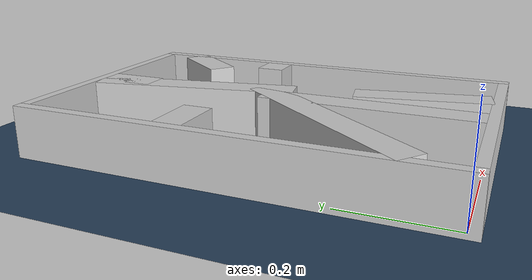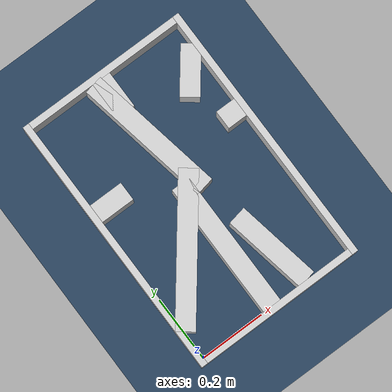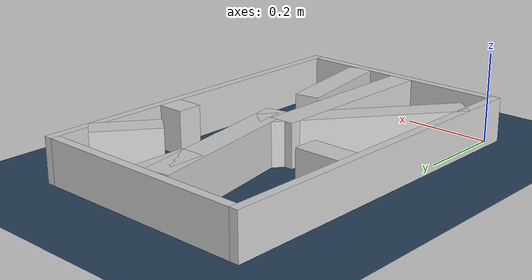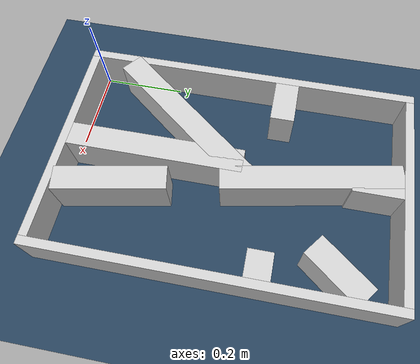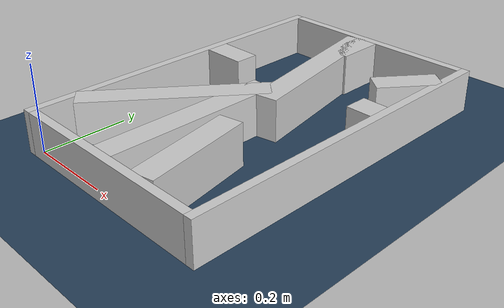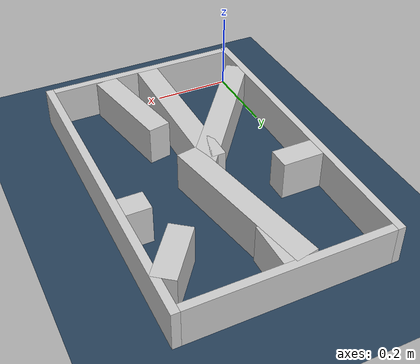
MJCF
<?xml version="1.0" ?>
<mujoco model="generated_real_template">
  <compiler angle="degree"/>
  <option timestep="0.002" integrator="implicitfast" iterations="100" cone="elliptic"/>
  <default>
    <geom density="1"/>
  </default>
  <asset>
    <texture builtin="gradient" height="3072" rgb1="0.3 0.5 0.7" rgb2="0 0 0" type="skybox" width="512"/>
    <texture builtin="checker" height="300" mark="edge" markrgb="0.8 0.8 0.8" name="groundplane" rgb1="0.2 0.3 0.4" rgb2="0.1 0.2 0.3" type="2d" width="300"/>
    <material name="groundplane" reflectance="0.2" texrepeat="5 5" texture="groundplane" texuniform="true"/>
  </asset>
  <worldbody>
    <light dir="0 0 -1" directional="true" pos="0 0 1.5"/>
    <geom name="floor" type="plane" condim="4" friction="0.5 0.005 0.001" material="groundplane" size="0 0 0.05"/>
    <body name="walls">
      <geom name="wall_boundary_left" type="box" condim="4" friction="1.0 0.005 0.0001" rgba="0.8 0.8 0.8 1" pos="-0.010000 0.387500 0.050000" euler="0 0 0.000000" size="0.010000 0.407500 0.050000"/>
      <geom name="wall_boundary_right" type="box" condim="4" friction="1.0 0.005 0.0001" rgba="0.8 0.8 0.8 1" pos="0.500000 0.387500 0.050000" euler="0 0 0.000000" size="0.010000 0.407500 0.050000"/>
      <geom name="wall_boundary_bottom" type="box" condim="4" friction="1.0 0.005 0.0001" rgba="0.8 0.8 0.8 1" pos="0.245000 -0.010000 0.050000" euler="0 0 0.000000" size="0.245000 0.010000 0.050000"/>
      <geom name="wall_boundary_top" type="box" condim="4" friction="1.0 0.005 0.0001" rgba="0.8 0.8 0.8 1" pos="0.245000 0.785000 0.050000" euler="0 0 0.000000" size="0.245000 0.010000 0.050000"/>
      <geom name="wall_inner_1_1" type="box" condim="4" friction="1.0 0.005 0.0001" rgba="0.8 0.8 0.8 1" pos="0.327145 0.126694 0.050000" euler="0 0 100.679711" size="0.128927 0.028500 0.050000"/>
      <geom name="wall_inner_1_2" type="box" condim="4" friction="1.0 0.005 0.0001" rgba="0.8 0.8 0.8 1" pos="0.243245 0.571584 0.050000" euler="0 0 100.679711" size="0.207002 0.028500 0.050000"/>
      <geom name="wall_inner_2_1" type="box" condim="4" friction="1.0 0.005 0.0001" rgba="0.8 0.8 0.8 1" pos="0.052300 0.485256 0.050000" euler="0 0 0.000000" size="0.052300 0.028500 0.050000"/>
      <geom name="wall_inner_2_2" type="box" condim="4" friction="1.0 0.005 0.0001" rgba="0.8 0.8 0.8 1" pos="0.459554 0.485256 0.050000" euler="0 0 0.000000" size="0.030446 0.028500 0.050000"/>
      <geom name="wall_inner_3_1" type="box" condim="4" friction="1.0 0.005 0.0001" rgba="0.8 0.8 0.8 1" pos="0.441596 0.648120 0.050000" euler="0 0 -127.899489" size="0.074745 0.028500 0.050000"/>
      <geom name="wall_inner_3_2" type="box" condim="4" friction="1.0 0.005 0.0001" rgba="0.8 0.8 0.8 1" pos="0.139420 0.259950 0.050000" euler="0 0 -127.899489" size="0.222911 0.028500 0.050000"/>
      <geom name="wall_inner_4_1" type="box" condim="4" friction="1.0 0.005 0.0001" rgba="0.8 0.8 0.8 1" pos="0.232001 0.206924 0.050000" euler="0 0 90.000000" size="0.206924 0.028500 0.050000"/>
      <geom name="wall_inner_4_2" type="box" condim="4" friction="1.0 0.005 0.0001" rgba="0.8 0.8 0.8 1" pos="0.232001 0.717943 0.050000" euler="0 0 90.000000" size="0.057057 0.028500 0.050000"/>
    </body>
  </worldbody>
</mujoco>
